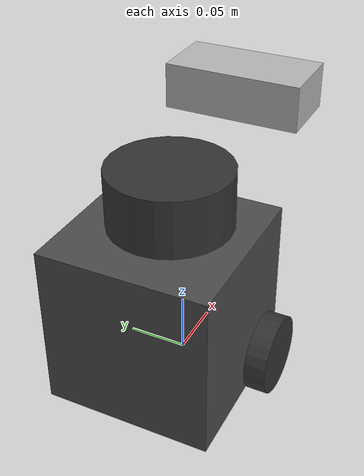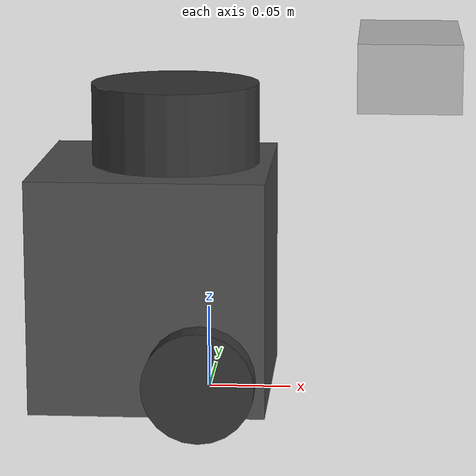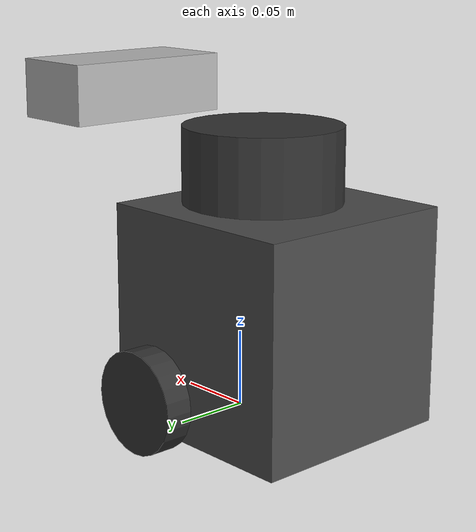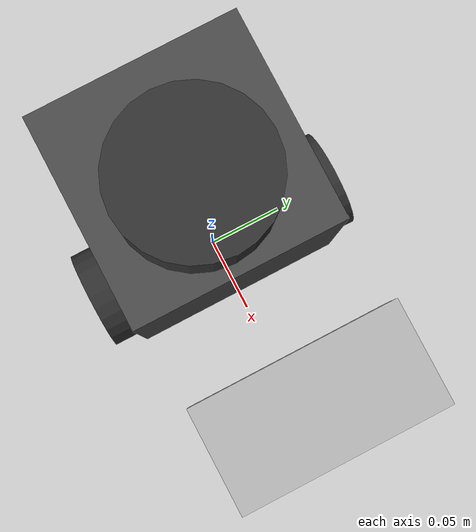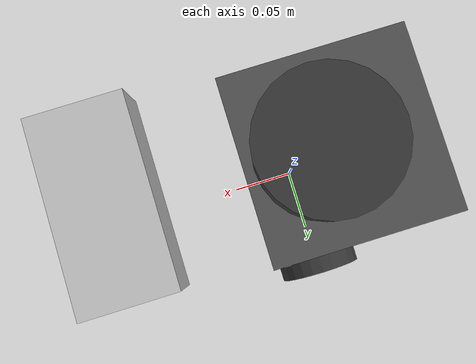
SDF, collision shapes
<?xml version="1.0" ?>
<sdf version="1.5">
  <model name="turtlebot3_burger_rgbd">
    <pose>0.0 0.0 0.0 0.0 0.0 0.0</pose>

    <link name="base_footprint"/>

    <link name="base_link">

      <inertial>
        <pose>-0.032 0 0.070 0 0 0</pose>
        <inertia>
          <ixx>7.2397393e-01</ixx>
          <ixy>4.686399e-10</ixy>
          <ixz>-1.09525703e-08</ixz>
          <iyy>7.2397393e-01</iyy>
          <iyz>2.8582649e-09</iyz>
          <izz>6.53050163e-01</izz>
        </inertia>
        <mass>8.2573504e-01</mass>
      </inertial>

      <collision name="base_collision">
        <pose>-0.032 0 0.070 0 0 0</pose>
        <geometry>
          <box>
            <size>0.140 0.140 0.140</size>
          </box>
        </geometry>
      </collision>

      <visual name="base_visual">
        <pose>-0.032 0 0 0 0 0</pose>
        <geometry>
          <mesh>
            <uri>model://turtlebot3_common/meshes/burger_base.dae</uri>
            <scale>0.001 0.001 0.001</scale>
          </mesh>
        </geometry>
        <material>
          <ambient>0.3 0.3 0.3 1.0</ambient>
          <diffuse>0.3 0.3 0.3 1.0</diffuse>
        </material>
      </visual>
    </link>

    <link name="imu_link">
      <sensor name="tb3_imu" type="imu">
        <always_on>true</always_on>
        <update_rate>200</update_rate>
        <topic>imu</topic>
        <imu>
          <angular_velocity>
            <x>
              <noise type="gaussian">
                <mean>0.0</mean>
                <stddev>2e-4</stddev>
              </noise>
            </x>
            <y>
              <noise type="gaussian">
                <mean>0.0</mean>
                <stddev>2e-4</stddev>
              </noise>
            </y>
            <z>
              <noise type="gaussian">
                <mean>0.0</mean>
                <stddev>2e-4</stddev>
              </noise>
            </z>
          </angular_velocity>
          <linear_acceleration>
            <x>
              <noise type="gaussian">
                <mean>0.0</mean>
                <stddev>1.7e-2</stddev>
              </noise>
            </x>
            <y>
              <noise type="gaussian">
                <mean>0.0</mean>
                <stddev>1.7e-2</stddev>
              </noise>
            </y>
            <z>
              <noise type="gaussian">
                <mean>0.0</mean>
                <stddev>1.7e-2</stddev>
              </noise>
            </z>
          </linear_acceleration>
        </imu>
      </sensor>
    </link>

    <link name="base_scan">
      <inertial>
        <pose>-0.020 0 0.161 0 0 0</pose>
        <inertia>
          <ixx>0.001</ixx>
          <ixy>0.000</ixy>
          <ixz>0.000</ixz>
          <iyy>0.001</iyy>
          <iyz>0.000</iyz>
          <izz>0.001</izz>
        </inertia>
        <mass>0.114</mass>
      </inertial>

      <collision name="lidar_sensor_collision">
        <pose>-0.020 0 0.161 0 0 0</pose>
        <geometry>
          <cylinder>
            <radius>0.0508</radius>
            <length>0.055</length>
          </cylinder>
        </geometry>
      </collision>

      <visual name="lidar_sensor_visual">
        <pose>-0.032 0 0.171 0 0 0</pose>
        <geometry>
          <mesh>
            <uri>model://turtlebot3_common/meshes/lds.dae</uri>
            <scale>0.001 0.001 0.001</scale>
          </mesh>
        </geometry>
        <material>
          <ambient>0.2 0.2 0.2 1.0</ambient>
          <diffuse>0.2 0.2 0.2 1.0</diffuse>
        </material>
      </visual>

      <sensor name="hls_lfcd_lds" type="gpu_lidar">
        <always_on>true</always_on>
        <visualize>true</visualize>
        <pose>-0.032 0 0.171 0 0 0</pose>
        <update_rate>5</update_rate>
        <topic>scan</topic>
        <gz_frame_id>base_scan</gz_frame_id>
        <lidar>
          <scan>
            <horizontal>
              <samples>360</samples>
              <resolution>1.000000</resolution>
              <min_angle>0.000000</min_angle>
              <max_angle>6.280000</max_angle>
            </horizontal>
          </scan>
          <range>
            <min>0.120000</min>
            <max>3.5</max>
            <resolution>0.015000</resolution>
          </range>
          <noise>
            <type>gaussian</type>
            <mean>0.0</mean>
            <stddev>0.01</stddev>
          </noise>
        </lidar>
      </sensor>
    </link>

    <link name="wheel_left_link">

      <inertial>
        <pose>0 0.08 0.023 -1.57 0 0</pose>
        <inertia>
          <ixx>1.8158194e-03</ixx>
          <ixy>-9.3392e-12</ixy>
          <ixz>1.04909e-11</ixz>
          <iyy>3.2922126e-03</iyy>
          <iyz>5.75694e-11</iyz>
          <izz>1.8158194e-03</izz>
        </inertia>
        <mass>2.8498940e-02</mass>
      </inertial>

      <collision name="wheel_left_collision">
        <pose>0 0.08 0.023 -1.57 0 0</pose>
        <geometry>
          <cylinder>
            <radius>0.033</radius>
            <length>0.018</length>
          </cylinder>
        </geometry>
        <surface>
          <!-- This friction pamareter don't contain reliable data!! -->
          <friction>
            <ode>
              <mu>100000.0</mu>
              <mu2>100000.0</mu2>
              <fdir1>0 0 0</fdir1>
              <slip1>0.0</slip1>
              <slip2>0.0</slip2>
            </ode>
          </friction>
          <contact>
            <ode>
              <soft_cfm>0</soft_cfm>
              <soft_erp>0.2</soft_erp>
              <kp>1e+5</kp>
              <kd>1</kd>
              <max_vel>0.01</max_vel>
              <min_depth>0.001</min_depth>
            </ode>
          </contact>
        </surface>
      </collision>

      <visual name="wheel_left_visual">
        <pose>0 0.08 0.023 0 0 0</pose>
        <geometry>
          <mesh>
            <uri>model://turtlebot3_common/meshes/tire.dae</uri>
            <scale>0.001 0.001 0.001</scale>
          </mesh>
        </geometry>
        <material>
          <ambient>0.2 0.2 0.2 1.0</ambient>
          <diffuse>0.2 0.2 0.2 1.0</diffuse>
        </material>
      </visual>
    </link>

    <link name="wheel_right_link">

      <inertial>
        <pose>0.0 -0.08 0.023 -1.57 0 0</pose>
        <inertia>
          <ixx>1.8158194e-03</ixx>
          <ixy>-9.3392e-12</ixy>
          <ixz>1.04909e-11</ixz>
          <iyy>3.2922126e-03</iyy>
          <iyz>5.75694e-11</iyz>
          <izz>1.8158194e-03</izz>
        </inertia>
        <mass>2.8498940e-02</mass>
      </inertial>

      <collision name="wheel_right_collision">
        <pose>0.0 -0.08 0.023 -1.57 0 0</pose>
        <geometry>
          <cylinder>
            <radius>0.033</radius>
            <length>0.018</length>
          </cylinder>
        </geometry>
        <surface>
          <!-- This friction pamareter don't contain reliable data!! -->
          <friction>
            <ode>
              <mu>100000.0</mu>
              <mu2>100000.0</mu2>
              <fdir1>0 0 0</fdir1>
              <slip1>0.0</slip1>
              <slip2>0.0</slip2>
            </ode>
          </friction>
          <contact>
            <ode>
              <soft_cfm>0</soft_cfm>
              <soft_erp>0.2</soft_erp>
              <kp>1e+5</kp>
              <kd>1</kd>
              <max_vel>0.01</max_vel>
              <min_depth>0.001</min_depth>
            </ode>
          </contact>
        </surface>
      </collision>

      <visual name="wheel_right_visual">
        <pose>0.0 -0.08 0.023 0 0 0</pose>
        <geometry>
          <mesh>
            <uri>model://turtlebot3_common/meshes/tire.dae</uri>
            <scale>0.001 0.001 0.001</scale>
          </mesh>
        </geometry>
        <material>
          <ambient>0.2 0.2 0.2 1.0</ambient>
          <diffuse>0.2 0.2 0.2 1.0</diffuse>
        </material>
      </visual>
    </link>

    <link name='caster_back_link'>
      <pose>-0.081 0 -0.004 -1.57 0 0</pose>
      <inertial>
        <mass>0.005</mass>
        <inertia>
          <ixx>0.001</ixx>
          <ixy>0.000</ixy>
          <ixz>0.000</ixz>
          <iyy>0.001</iyy>
          <iyz>0.000</iyz>
          <izz>0.001</izz>
        </inertia>
      </inertial>
      <collision name='collision'>
        <geometry>
          <sphere>
            <radius>0.005000</radius>
          </sphere>
        </geometry>
        <surface>
          <contact>
            <ode>
              <soft_cfm>0</soft_cfm>
              <soft_erp>0.2</soft_erp>
              <kp>1e+5</kp>
              <kd>1</kd>
              <max_vel>0.01</max_vel>
              <min_depth>0.001</min_depth>
            </ode>
          </contact>
        </surface>
      </collision>
    </link>

    <joint name="base_joint" type="fixed">
      <parent>base_footprint</parent>
      <child>base_link</child>
      <pose>0.0 0.0 0.010 0 0 0</pose>
    </joint>

    <joint name="wheel_left_joint" type="revolute">
      <parent>base_link</parent>
      <child>wheel_left_link</child>
      <pose>0.0 0.08 0.023 -1.57 0 0</pose>
      <axis>
        <xyz>0 0 1</xyz>
      </axis>
    </joint>

    <joint name="wheel_right_joint" type="revolute">
      <parent>base_link</parent>
      <child>wheel_right_link</child>
      <pose>0.0 -0.08 0.023 -1.57 0 0</pose>
      <axis>
        <xyz>0 0 1</xyz>
      </axis>
    </joint>

    <joint name='caster_back_joint' type='ball'>
      <parent>base_link</parent>
      <child>caster_back_link</child>
    </joint>

    <joint name="imu_joint" type="fixed">
      <parent>base_link</parent>
      <child>imu_link</child>
      <pose>-0.032 0 0.068 0 0 0</pose>
      <axis>
        <xyz>0 0 1</xyz>
      </axis>
    </joint>

    <joint name="lidar_joint" type="fixed">
      <parent>base_link</parent>
      <child>base_scan</child>
      <pose>-0.032 0 0.171 0 0 0</pose>
      <axis>
        <xyz>0 0 1</xyz>
      </axis>
    </joint>

    <plugin filename="gz-sim-diff-drive-system" name="gz::sim::systems::DiffDrive">
      <!-- wheels -->
      <left_joint>wheel_left_joint</left_joint>
      <right_joint>wheel_right_joint</right_joint>

      <!-- kinematics -->
      <wheel_separation>0.160</wheel_separation>
      <wheel_radius>0.033</wheel_radius>

      <!-- limits -->
      <max_linear_acceleration>1.0</max_linear_acceleration>

      <topic>cmd_vel</topic>
      <odom_topic>odom</odom_topic>
      <frame_id>odom</frame_id>
      <tf_topic>/tf</tf_topic>
      <odom_publisher_frequency>30</odom_publisher_frequency>
      <child_frame_id>base_footprint</child_frame_id>
    </plugin>

    <plugin filename="gz-sim-joint-state-publisher-system"
      name="gz::sim::systems::JointStatePublisher">
      <topic>joint_states</topic>
      <joint_name>wheel_left_joint</joint_name>
      <joint_name>wheel_right_joint</joint_name>
    </plugin>

        <!-- RGB-D Camera -->
    <link name="camera_link">

      <pose relative_to="base_link">0.12 0 0.20 0 0 0</pose>

      <inertial>
        <mass>0.10</mass>
        <inertia>
          <ixx>0.0001</ixx>
          <ixy>0.0</ixy>
          <ixz>0.0</ixz>
          <iyy>0.0001</iyy>
          <iyz>0.0</iyz>
          <izz>0.0001</izz>
        </inertia>
      </inertial>

      <visual name="camera_visual">
        <geometry>
          <box>
            <size>0.06 0.12 0.04</size>
          </box>
        </geometry>
      </visual>

      <collision name="camera_collision">
        <geometry>
          <box>
            <size>0.06 0.12 0.04</size>
          </box>
        </geometry>
      </collision>

      <!-- RGB-D sensor -->
      <sensor name="rgbd_camera" type="rgbd_camera">
        <always_on>true</always_on>
        <update_rate>10</update_rate>
        <visualize>true</visualize>

        <camera>
          <horizontal_fov>1.047</horizontal_fov>

          <image>
            <width>640</width>
            <height>480</height>
            <format>R8G8B8</format>
          </image>

          <clip>
            <near>0.05</near>
            <far>10.0</far>
          </clip>
        </camera>

        <depth_camera>
          <clip>
            <near>0.05</near>
            <far>10.0</far>
          </clip>
        </depth_camera>
      </sensor>

    </link>

    <!-- Camera fixed joint -->
    <joint name="camera_joint" type="fixed">
      <parent>base_link</parent>
      <child>camera_link</child>
    </joint>

  </model>
</sdf>
